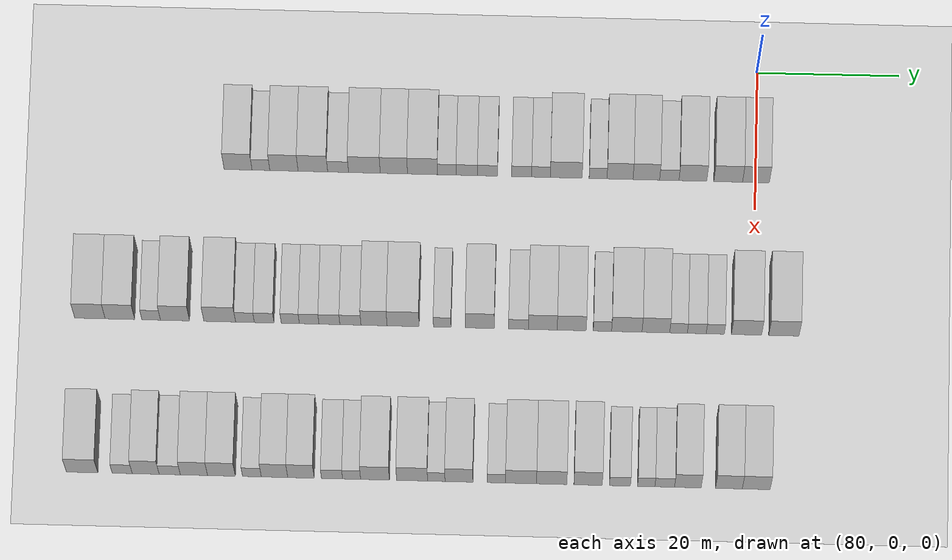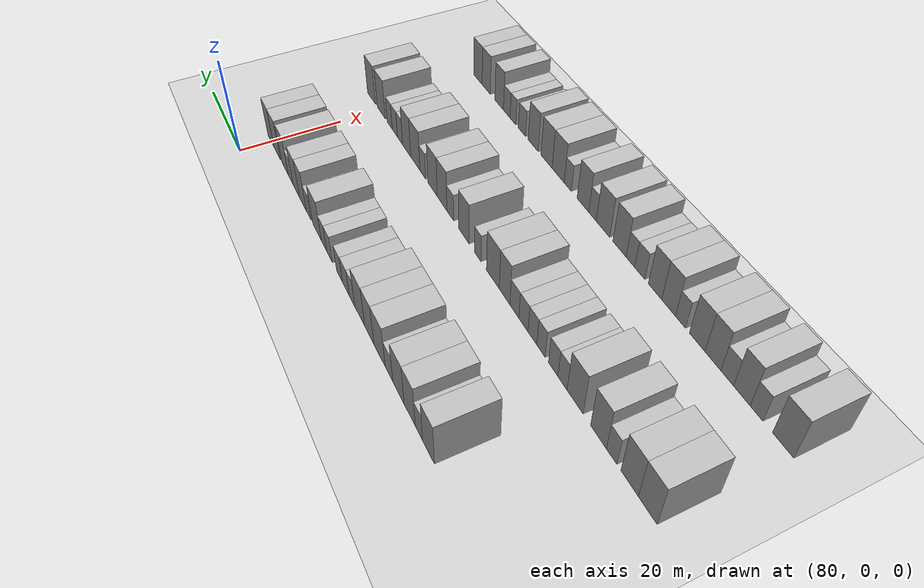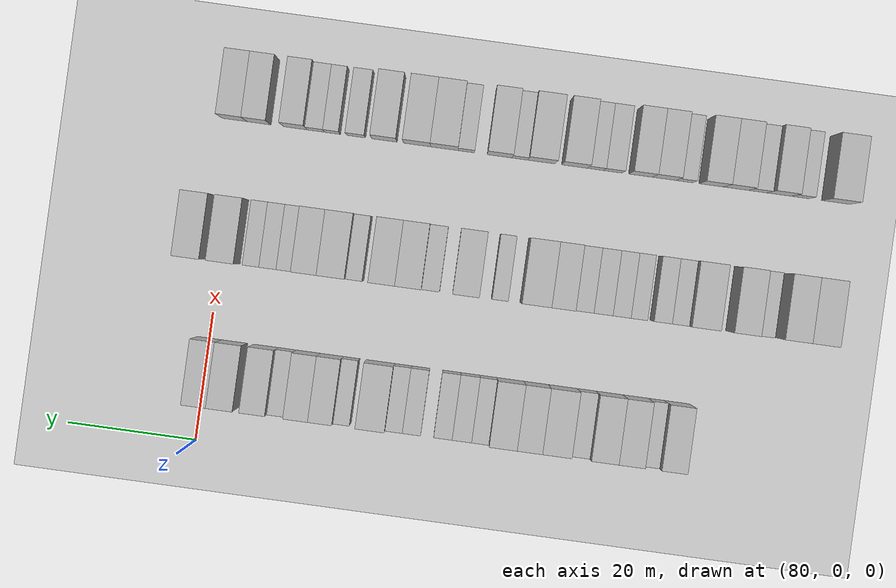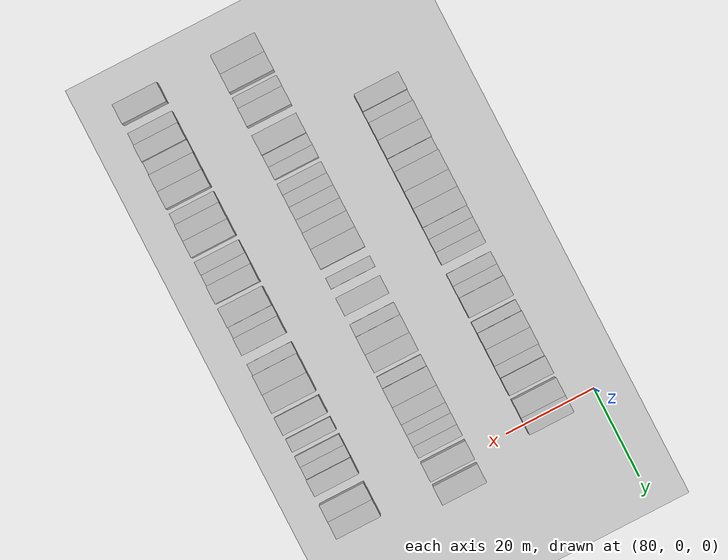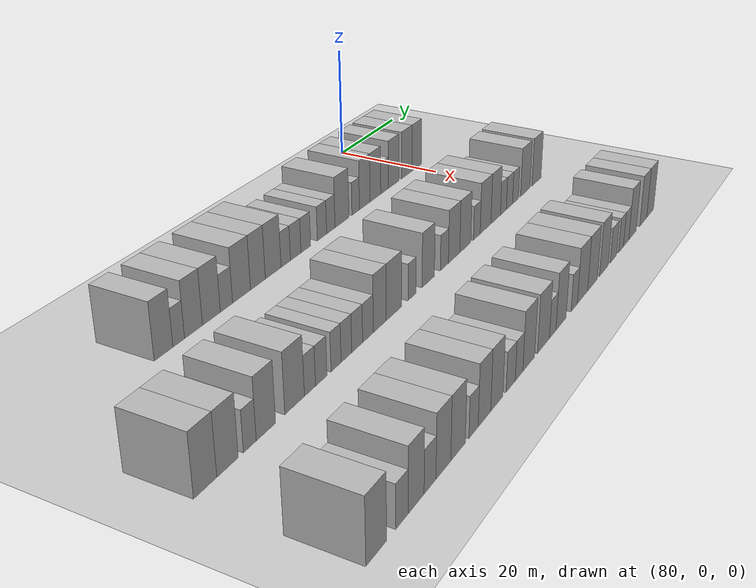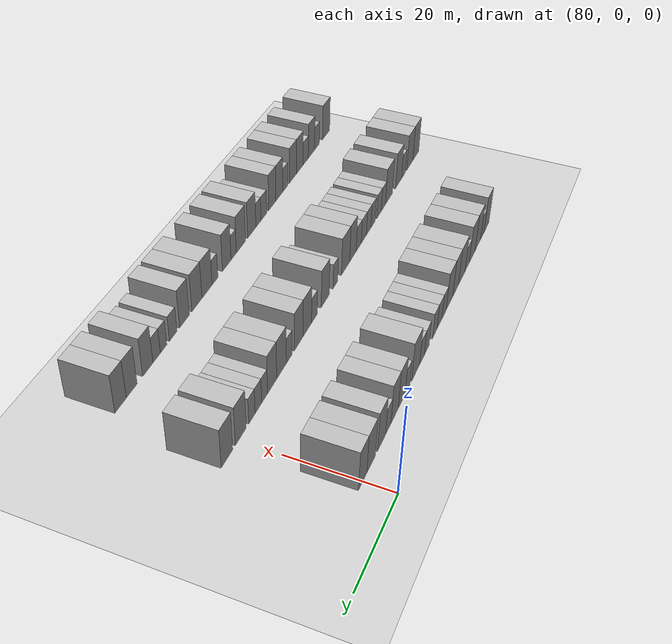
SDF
<sdf version="1.6">
 <world name="default">
  <include>
   <name>ground_plane_2</name>
   <uri>model://HANNAS_ground_plane</uri>
   <pose>100 0 0  0 0 0</pose>
  </include>
  <model name="building_650">
   <static>1</static>
   <pose>91.0000 -72.9061 0 0.000000 0.000000 0.000000</pose>
   <link name="link">
    <pose>0 0 4.50 0 0 0</pose>
    <collision name="collision"><geometry><box><size>10.0000 3.9330 9.0000</size></box></geometry></collision>
    <visual name="visual">
     <cast_shadows>0</cast_shadows>
     <geometry><box><size>10.0000 3.9330 9.0000</size></box></geometry>
     <material>
      <script>
       <uri>model://HANNAS_wall/materials/scripts</uri>
       <uri>model://HANNAS_wall/materials/textures</uri>
       <name>vrc/HANNAS_wall</name>
      </script>
     </material>
    </visual>
   </link>
  </model>
  <model name="building_651">
   <static>1</static>
   <pose>91.0000 -69.6868 0 0.000000 0.000000 0.000000</pose>
   <link name="link">
    <pose>0 0 3.00 0 0 0</pose>
    <collision name="collision"><geometry><box><size>10.0000 2.5056 6.0000</size></box></geometry></collision>
    <visual name="visual">
     <cast_shadows>0</cast_shadows>
     <geometry><box><size>10.0000 2.5056 6.0000</size></box></geometry>
     <material>
      <script>
       <uri>model://HANNAS_wall/materials/scripts</uri>
       <uri>model://HANNAS_wall/materials/textures</uri>
       <name>vrc/HANNAS_wall</name>
      </script>
     </material>
    </visual>
   </link>
  </model>
  <model name="building_652">
   <static>1</static>
   <pose>91.0000 -66.4385 0 0.000000 0.000000 0.000000</pose>
   <link name="link">
    <pose>0 0 4.50 0 0 0</pose>
    <collision name="collision"><geometry><box><size>10.0000 3.9911 9.0000</size></box></geometry></collision>
    <visual name="visual">
     <cast_shadows>0</cast_shadows>
     <geometry><box><size>10.0000 3.9911 9.0000</size></box></geometry>
     <material>
      <script>
       <uri>model://HANNAS_wall/materials/scripts</uri>
       <uri>model://HANNAS_wall/materials/textures</uri>
       <name>vrc/HANNAS_wall</name>
      </script>
     </material>
    </visual>
   </link>
  </model>
  <model name="building_653">
   <static>1</static>
   <pose>91.0000 -62.3617 0 0.000000 0.000000 0.000000</pose>
   <link name="link">
    <pose>0 0 4.50 0 0 0</pose>
    <collision name="collision"><geometry><box><size>10.0000 4.1624 9.0000</size></box></geometry></collision>
    <visual name="visual">
     <cast_shadows>0</cast_shadows>
     <geometry><box><size>10.0000 4.1624 9.0000</size></box></geometry>
     <material>
      <script>
       <uri>model://HANNAS_wall/materials/scripts</uri>
       <uri>model://HANNAS_wall/materials/textures</uri>
       <name>vrc/HANNAS_wall</name>
      </script>
     </material>
    </visual>
   </link>
  </model>
  <model name="building_654">
   <static>1</static>
   <pose>91.0000 -58.8092 0 0.000000 0.000000 0.000000</pose>
   <link name="link">
    <pose>0 0 3.00 0 0 0</pose>
    <collision name="collision"><geometry><box><size>10.0000 2.9426 6.0000</size></box></geometry></collision>
    <visual name="visual">
     <cast_shadows>0</cast_shadows>
     <geometry><box><size>10.0000 2.9426 6.0000</size></box></geometry>
     <material>
      <script>
       <uri>model://HANNAS_wall/materials/scripts</uri>
       <uri>model://HANNAS_wall/materials/textures</uri>
       <name>vrc/HANNAS_wall</name>
      </script>
     </material>
    </visual>
   </link>
  </model>
  <model name="building_655">
   <static>1</static>
   <pose>91.0000 -55.1025 0 0.000000 0.000000 0.000000</pose>
   <link name="link">
    <pose>0 0 4.50 0 0 0</pose>
    <collision name="collision"><geometry><box><size>10.0000 4.4709 9.0000</size></box></geometry></collision>
    <visual name="visual">
     <cast_shadows>0</cast_shadows>
     <geometry><box><size>10.0000 4.4709 9.0000</size></box></geometry>
     <material>
      <script>
       <uri>model://HANNAS_wall/materials/scripts</uri>
       <uri>model://HANNAS_wall/materials/textures</uri>
       <name>vrc/HANNAS_wall</name>
      </script>
     </material>
    </visual>
   </link>
  </model>
  <model name="building_656">
   <static>1</static>
   <pose>91.0000 -50.9468 0 0.000000 0.000000 0.000000</pose>
   <link name="link">
    <pose>0 0 4.50 0 0 0</pose>
    <collision name="collision"><geometry><box><size>10.0000 3.8405 9.0000</size></box></geometry></collision>
    <visual name="visual">
     <cast_shadows>0</cast_shadows>
     <geometry><box><size>10.0000 3.8405 9.0000</size></box></geometry>
     <material>
      <script>
       <uri>model://HANNAS_wall/materials/scripts</uri>
       <uri>model://HANNAS_wall/materials/textures</uri>
       <name>vrc/HANNAS_wall</name>
      </script>
     </material>
    </visual>
   </link>
  </model>
  <model name="building_657">
   <static>1</static>
   <pose>91.0000 -46.9062 0 0.000000 0.000000 0.000000</pose>
   <link name="link">
    <pose>0 0 4.50 0 0 0</pose>
    <collision name="collision"><geometry><box><size>10.0000 4.2408 9.0000</size></box></geometry></collision>
    <visual name="visual">
     <cast_shadows>0</cast_shadows>
     <geometry><box><size>10.0000 4.2408 9.0000</size></box></geometry>
     <material>
      <script>
       <uri>model://HANNAS_wall/materials/scripts</uri>
       <uri>model://HANNAS_wall/materials/textures</uri>
       <name>vrc/HANNAS_wall</name>
      </script>
     </material>
    </visual>
   </link>
  </model>
  <model name="building_658">
   <static>1</static>
   <pose>91.0000 -43.4727 0 0.000000 0.000000 0.000000</pose>
   <link name="link">
    <pose>0 0 3.00 0 0 0</pose>
    <collision name="collision"><geometry><box><size>10.0000 2.6260 6.0000</size></box></geometry></collision>
    <visual name="visual">
     <cast_shadows>0</cast_shadows>
     <geometry><box><size>10.0000 2.6260 6.0000</size></box></geometry>
     <material>
      <script>
       <uri>model://HANNAS_wall/materials/scripts</uri>
       <uri>model://HANNAS_wall/materials/textures</uri>
       <name>vrc/HANNAS_wall</name>
      </script>
     </material>
    </visual>
   </link>
  </model>
  <model name="building_659">
   <static>1</static>
   <pose>91.0000 -40.6644 0 0.000000 0.000000 0.000000</pose>
   <link name="link">
    <pose>0 0 3.00 0 0 0</pose>
    <collision name="collision"><geometry><box><size>10.0000 2.9906 6.0000</size></box></geometry></collision>
    <visual name="visual">
     <cast_shadows>0</cast_shadows>
     <geometry><box><size>10.0000 2.9906 6.0000</size></box></geometry>
     <material>
      <script>
       <uri>model://HANNAS_wall/materials/scripts</uri>
       <uri>model://HANNAS_wall/materials/textures</uri>
       <name>vrc/HANNAS_wall</name>
      </script>
     </material>
    </visual>
   </link>
  </model>
  <model name="building_660">
   <static>1</static>
   <pose>91.0000 -37.7574 0 0.000000 0.000000 0.000000</pose>
   <link name="link">
    <pose>0 0 3.00 0 0 0</pose>
    <collision name="collision"><geometry><box><size>10.0000 2.8234 6.0000</size></box></geometry></collision>
    <visual name="visual">
     <cast_shadows>0</cast_shadows>
     <geometry><box><size>10.0000 2.8234 6.0000</size></box></geometry>
     <material>
      <script>
       <uri>model://HANNAS_wall/materials/scripts</uri>
       <uri>model://HANNAS_wall/materials/textures</uri>
       <name>vrc/HANNAS_wall</name>
      </script>
     </material>
    </visual>
   </link>
  </model>
  <model name="building_661">
   <static>1</static>
   <pose>91.0000 -32.9407 0 0.000000 0.000000 0.000000</pose>
   <link name="link">
    <pose>0 0 3.00 0 0 0</pose>
    <collision name="collision"><geometry><box><size>10.0000 2.8101 6.0000</size></box></geometry></collision>
    <visual name="visual">
     <cast_shadows>0</cast_shadows>
     <geometry><box><size>10.0000 2.8101 6.0000</size></box></geometry>
     <material>
      <script>
       <uri>model://HANNAS_wall/materials/scripts</uri>
       <uri>model://HANNAS_wall/materials/textures</uri>
       <name>vrc/HANNAS_wall</name>
      </script>
     </material>
    </visual>
   </link>
  </model>
  <model name="building_662">
   <static>1</static>
   <pose>91.0000 -30.2184 0 0.000000 0.000000 0.000000</pose>
   <link name="link">
    <pose>0 0 3.00 0 0 0</pose>
    <collision name="collision"><geometry><box><size>10.0000 2.6346 6.0000</size></box></geometry></collision>
    <visual name="visual">
     <cast_shadows>0</cast_shadows>
     <geometry><box><size>10.0000 2.6346 6.0000</size></box></geometry>
     <material>
      <script>
       <uri>model://HANNAS_wall/materials/scripts</uri>
       <uri>model://HANNAS_wall/materials/textures</uri>
       <name>vrc/HANNAS_wall</name>
      </script>
     </material>
    </visual>
   </link>
  </model>
  <model name="building_663">
   <static>1</static>
   <pose>91.0000 -26.6694 0 0.000000 0.000000 0.000000</pose>
   <link name="link">
    <pose>0 0 4.50 0 0 0</pose>
    <collision name="collision"><geometry><box><size>10.0000 4.4635 9.0000</size></box></geometry></collision>
    <visual name="visual">
     <cast_shadows>0</cast_shadows>
     <geometry><box><size>10.0000 4.4635 9.0000</size></box></geometry>
     <material>
      <script>
       <uri>model://HANNAS_wall/materials/scripts</uri>
       <uri>model://HANNAS_wall/materials/textures</uri>
       <name>vrc/HANNAS_wall</name>
      </script>
     </material>
    </visual>
   </link>
  </model>
  <model name="building_664">
   <static>1</static>
   <pose>91.0000 -22.1870 0 0.000000 0.000000 0.000000</pose>
   <link name="link">
    <pose>0 0 3.00 0 0 0</pose>
    <collision name="collision"><geometry><box><size>10.0000 2.5015 6.0000</size></box></geometry></collision>
    <visual name="visual">
     <cast_shadows>0</cast_shadows>
     <geometry><box><size>10.0000 2.5015 6.0000</size></box></geometry>
     <material>
      <script>
       <uri>model://HANNAS_wall/materials/scripts</uri>
       <uri>model://HANNAS_wall/materials/textures</uri>
       <name>vrc/HANNAS_wall</name>
      </script>
     </material>
    </visual>
   </link>
  </model>
  <model name="building_665">
   <static>1</static>
   <pose>91.0000 -19.1028 0 0.000000 0.000000 0.000000</pose>
   <link name="link">
    <pose>0 0 4.50 0 0 0</pose>
    <collision name="collision"><geometry><box><size>10.0000 3.6669 9.0000</size></box></geometry></collision>
    <visual name="visual">
     <cast_shadows>0</cast_shadows>
     <geometry><box><size>10.0000 3.6669 9.0000</size></box></geometry>
     <material>
      <script>
       <uri>model://HANNAS_wall/materials/scripts</uri>
       <uri>model://HANNAS_wall/materials/textures</uri>
       <name>vrc/HANNAS_wall</name>
      </script>
     </material>
    </visual>
   </link>
  </model>
  <model name="building_666">
   <static>1</static>
   <pose>91.0000 -15.3914 0 0.000000 0.000000 0.000000</pose>
   <link name="link">
    <pose>0 0 4.50 0 0 0</pose>
    <collision name="collision"><geometry><box><size>10.0000 3.7560 9.0000</size></box></geometry></collision>
    <visual name="visual">
     <cast_shadows>0</cast_shadows>
     <geometry><box><size>10.0000 3.7560 9.0000</size></box></geometry>
     <material>
      <script>
       <uri>model://HANNAS_wall/materials/scripts</uri>
       <uri>model://HANNAS_wall/materials/textures</uri>
       <name>vrc/HANNAS_wall</name>
      </script>
     </material>
    </visual>
   </link>
  </model>
  <model name="building_667">
   <static>1</static>
   <pose>91.0000 -12.1501 0 0.000000 0.000000 0.000000</pose>
   <link name="link">
    <pose>0 0 3.00 0 0 0</pose>
    <collision name="collision"><geometry><box><size>10.0000 2.7265 6.0000</size></box></geometry></collision>
    <visual name="visual">
     <cast_shadows>0</cast_shadows>
     <geometry><box><size>10.0000 2.7265 6.0000</size></box></geometry>
     <material>
      <script>
       <uri>model://HANNAS_wall/materials/scripts</uri>
       <uri>model://HANNAS_wall/materials/textures</uri>
       <name>vrc/HANNAS_wall</name>
      </script>
     </material>
    </visual>
   </link>
  </model>
  <model name="building_668">
   <static>1</static>
   <pose>91.0000 -8.8299 0 0.000000 0.000000 0.000000</pose>
   <link name="link">
    <pose>0 0 4.50 0 0 0</pose>
    <collision name="collision"><geometry><box><size>10.0000 3.9139 9.0000</size></box></geometry></collision>
    <visual name="visual">
     <cast_shadows>0</cast_shadows>
     <geometry><box><size>10.0000 3.9139 9.0000</size></box></geometry>
     <material>
      <script>
       <uri>model://HANNAS_wall/materials/scripts</uri>
       <uri>model://HANNAS_wall/materials/textures</uri>
       <name>vrc/HANNAS_wall</name>
      </script>
     </material>
    </visual>
   </link>
  </model>
  <model name="building_669">
   <static>1</static>
   <pose>91.0000 -3.8516 0 0.000000 0.000000 0.000000</pose>
   <link name="link">
    <pose>0 0 4.50 0 0 0</pose>
    <collision name="collision"><geometry><box><size>10.0000 4.0427 9.0000</size></box></geometry></collision>
    <visual name="visual">
     <cast_shadows>0</cast_shadows>
     <geometry><box><size>10.0000 4.0427 9.0000</size></box></geometry>
     <material>
      <script>
       <uri>model://HANNAS_wall/materials/scripts</uri>
       <uri>model://HANNAS_wall/materials/textures</uri>
       <name>vrc/HANNAS_wall</name>
      </script>
     </material>
    </visual>
   </link>
  </model>
  <model name="building_670">
   <static>1</static>
   <pose>91.0000 0.0555 0 0.000000 0.000000 0.000000</pose>
   <link name="link">
    <pose>0 0 4.50 0 0 0</pose>
    <collision name="collision"><geometry><box><size>10.0000 3.7714 9.0000</size></box></geometry></collision>
    <visual name="visual">
     <cast_shadows>0</cast_shadows>
     <geometry><box><size>10.0000 3.7714 9.0000</size></box></geometry>
     <material>
      <script>
       <uri>model://HANNAS_wall/materials/scripts</uri>
       <uri>model://HANNAS_wall/materials/textures</uri>
       <name>vrc/HANNAS_wall</name>
      </script>
     </material>
    </visual>
   </link>
  </model>
  <model name="building_846">
   <static>1</static>
   <pose>113.0000 -92.8851 0 0.000000 0.000000 0.000000</pose>
   <link name="link">
    <pose>0 0 4.50 0 0 0</pose>
    <collision name="collision"><geometry><box><size>10.0000 4.2647 9.0000</size></box></geometry></collision>
    <visual name="visual">
     <cast_shadows>0</cast_shadows>
     <geometry><box><size>10.0000 4.2647 9.0000</size></box></geometry>
     <material>
      <script>
       <uri>model://HANNAS_wall/materials/scripts</uri>
       <uri>model://HANNAS_wall/materials/textures</uri>
       <name>vrc/HANNAS_wall</name>
      </script>
     </material>
    </visual>
   </link>
  </model>
  <model name="building_847">
   <static>1</static>
   <pose>113.0000 -88.6807 0 0.000000 0.000000 0.000000</pose>
   <link name="link">
    <pose>0 0 4.50 0 0 0</pose>
    <collision name="collision"><geometry><box><size>10.0000 4.1440 9.0000</size></box></geometry></collision>
    <visual name="visual">
     <cast_shadows>0</cast_shadows>
     <geometry><box><size>10.0000 4.1440 9.0000</size></box></geometry>
     <material>
      <script>
       <uri>model://HANNAS_wall/materials/scripts</uri>
       <uri>model://HANNAS_wall/materials/textures</uri>
       <name>vrc/HANNAS_wall</name>
      </script>
     </material>
    </visual>
   </link>
  </model>
  <model name="building_848">
   <static>1</static>
   <pose>113.0000 -84.3056 0 0.000000 0.000000 0.000000</pose>
   <link name="link">
    <pose>0 0 3.00 0 0 0</pose>
    <collision name="collision"><geometry><box><size>10.0000 2.6062 6.0000</size></box></geometry></collision>
    <visual name="visual">
     <cast_shadows>0</cast_shadows>
     <geometry><box><size>10.0000 2.6062 6.0000</size></box></geometry>
     <material>
      <script>
       <uri>model://HANNAS_wall/materials/scripts</uri>
       <uri>model://HANNAS_wall/materials/textures</uri>
       <name>vrc/HANNAS_wall</name>
      </script>
     </material>
    </visual>
   </link>
  </model>
  <model name="building_849">
   <static>1</static>
   <pose>113.0000 -80.9613 0 0.000000 0.000000 0.000000</pose>
   <link name="link">
    <pose>0 0 4.50 0 0 0</pose>
    <collision name="collision"><geometry><box><size>10.0000 4.0823 9.0000</size></box></geometry></collision>
    <visual name="visual">
     <cast_shadows>0</cast_shadows>
     <geometry><box><size>10.0000 4.0823 9.0000</size></box></geometry>
     <material>
      <script>
       <uri>model://HANNAS_wall/materials/scripts</uri>
       <uri>model://HANNAS_wall/materials/textures</uri>
       <name>vrc/HANNAS_wall</name>
      </script>
     </material>
    </visual>
   </link>
  </model>
  <model name="building_850">
   <static>1</static>
   <pose>113.0000 -74.6984 0 0.000000 0.000000 0.000000</pose>
   <link name="link">
    <pose>0 0 4.50 0 0 0</pose>
    <collision name="collision"><geometry><box><size>10.0000 4.4434 9.0000</size></box></geometry></collision>
    <visual name="visual">
     <cast_shadows>0</cast_shadows>
     <geometry><box><size>10.0000 4.4434 9.0000</size></box></geometry>
     <material>
      <script>
       <uri>model://HANNAS_wall/materials/scripts</uri>
       <uri>model://HANNAS_wall/materials/textures</uri>
       <name>vrc/HANNAS_wall</name>
      </script>
     </material>
    </visual>
   </link>
  </model>
  <model name="building_851">
   <static>1</static>
   <pose>113.0000 -71.1653 0 0.000000 0.000000 0.000000</pose>
   <link name="link">
    <pose>0 0 3.00 0 0 0</pose>
    <collision name="collision"><geometry><box><size>10.0000 2.6228 6.0000</size></box></geometry></collision>
    <visual name="visual">
     <cast_shadows>0</cast_shadows>
     <geometry><box><size>10.0000 2.6228 6.0000</size></box></geometry>
     <material>
      <script>
       <uri>model://HANNAS_wall/materials/scripts</uri>
       <uri>model://HANNAS_wall/materials/textures</uri>
       <name>vrc/HANNAS_wall</name>
      </script>
     </material>
    </visual>
   </link>
  </model>
  <model name="building_852">
   <static>1</static>
   <pose>113.0000 -68.4687 0 0.000000 0.000000 0.000000</pose>
   <link name="link">
    <pose>0 0 3.00 0 0 0</pose>
    <collision name="collision"><geometry><box><size>10.0000 2.7706 6.0000</size></box></geometry></collision>
    <visual name="visual">
     <cast_shadows>0</cast_shadows>
     <geometry><box><size>10.0000 2.7706 6.0000</size></box></geometry>
     <material>
      <script>
       <uri>model://HANNAS_wall/materials/scripts</uri>
       <uri>model://HANNAS_wall/materials/textures</uri>
       <name>vrc/HANNAS_wall</name>
      </script>
     </material>
    </visual>
   </link>
  </model>
  <model name="building_853">
   <static>1</static>
   <pose>113.0000 -64.8138 0 0.000000 0.000000 0.000000</pose>
   <link name="link">
    <pose>0 0 3.00 0 0 0</pose>
    <collision name="collision"><geometry><box><size>10.0000 2.5391 6.0000</size></box></geometry></collision>
    <visual name="visual">
     <cast_shadows>0</cast_shadows>
     <geometry><box><size>10.0000 2.5391 6.0000</size></box></geometry>
     <material>
      <script>
       <uri>model://HANNAS_wall/materials/scripts</uri>
       <uri>model://HANNAS_wall/materials/textures</uri>
       <name>vrc/HANNAS_wall</name>
      </script>
     </material>
    </visual>
   </link>
  </model>
  <model name="building_854">
   <static>1</static>
   <pose>113.0000 -62.1685 0 0.000000 0.000000 0.000000</pose>
   <link name="link">
    <pose>0 0 3.00 0 0 0</pose>
    <collision name="collision"><geometry><box><size>10.0000 2.7515 6.0000</size></box></geometry></collision>
    <visual name="visual">
     <cast_shadows>0</cast_shadows>
     <geometry><box><size>10.0000 2.7515 6.0000</size></box></geometry>
     <material>
      <script>
       <uri>model://HANNAS_wall/materials/scripts</uri>
       <uri>model://HANNAS_wall/materials/textures</uri>
       <name>vrc/HANNAS_wall</name>
      </script>
     </material>
    </visual>
   </link>
  </model>
  <model name="building_855">
   <static>1</static>
   <pose>113.0000 -59.3301 0 0.000000 0.000000 0.000000</pose>
   <link name="link">
    <pose>0 0 3.00 0 0 0</pose>
    <collision name="collision"><geometry><box><size>10.0000 2.9253 6.0000</size></box></geometry></collision>
    <visual name="visual">
     <cast_shadows>0</cast_shadows>
     <geometry><box><size>10.0000 2.9253 6.0000</size></box></geometry>
     <material>
      <script>
       <uri>model://HANNAS_wall/materials/scripts</uri>
       <uri>model://HANNAS_wall/materials/textures</uri>
       <name>vrc/HANNAS_wall</name>
      </script>
     </material>
    </visual>
   </link>
  </model>
  <model name="building_856">
   <static>1</static>
   <pose>113.0000 -56.3866 0 0.000000 0.000000 0.000000</pose>
   <link name="link">
    <pose>0 0 3.00 0 0 0</pose>
    <collision name="collision"><geometry><box><size>10.0000 2.9619 6.0000</size></box></geometry></collision>
    <visual name="visual">
     <cast_shadows>0</cast_shadows>
     <geometry><box><size>10.0000 2.9619 6.0000</size></box></geometry>
     <material>
      <script>
       <uri>model://HANNAS_wall/materials/scripts</uri>
       <uri>model://HANNAS_wall/materials/textures</uri>
       <name>vrc/HANNAS_wall</name>
      </script>
     </material>
    </visual>
   </link>
  </model>
  <model name="building_857">
   <static>1</static>
   <pose>113.0000 -53.0785 0 0.000000 0.000000 0.000000</pose>
   <link name="link">
    <pose>0 0 4.50 0 0 0</pose>
    <collision name="collision"><geometry><box><size>10.0000 3.6541 9.0000</size></box></geometry></collision>
    <visual name="visual">
     <cast_shadows>0</cast_shadows>
     <geometry><box><size>10.0000 3.6541 9.0000</size></box></geometry>
     <material>
      <script>
       <uri>model://HANNAS_wall/materials/scripts</uri>
       <uri>model://HANNAS_wall/materials/textures</uri>
       <name>vrc/HANNAS_wall</name>
      </script>
     </material>
    </visual>
   </link>
  </model>
  <model name="building_858">
   <static>1</static>
   <pose>113.0000 -49.0031 0 0.000000 0.000000 0.000000</pose>
   <link name="link">
    <pose>0 0 4.50 0 0 0</pose>
    <collision name="collision"><geometry><box><size>10.0000 4.4967 9.0000</size></box></geometry></collision>
    <visual name="visual">
     <cast_shadows>0</cast_shadows>
     <geometry><box><size>10.0000 4.4967 9.0000</size></box></geometry>
     <material>
      <script>
       <uri>model://HANNAS_wall/materials/scripts</uri>
       <uri>model://HANNAS_wall/materials/textures</uri>
       <name>vrc/HANNAS_wall</name>
      </script>
     </material>
    </visual>
   </link>
  </model>
  <model name="building_859">
   <static>1</static>
   <pose>113.0000 -43.5212 0 0.000000 0.000000 0.000000</pose>
   <link name="link">
    <pose>0 0 3.00 0 0 0</pose>
    <collision name="collision"><geometry><box><size>10.0000 2.4669 6.0000</size></box></geometry></collision>
    <visual name="visual">
     <cast_shadows>0</cast_shadows>
     <geometry><box><size>10.0000 2.4669 6.0000</size></box></geometry>
     <material>
      <script>
       <uri>model://HANNAS_wall/materials/scripts</uri>
       <uri>model://HANNAS_wall/materials/textures</uri>
       <name>vrc/HANNAS_wall</name>
      </script>
     </material>
    </visual>
   </link>
  </model>
  <model name="building_860">
   <static>1</static>
   <pose>113.0000 -38.2627 0 0.000000 0.000000 0.000000</pose>
   <link name="link">
    <pose>0 0 4.50 0 0 0</pose>
    <collision name="collision"><geometry><box><size>10.0000 4.0501 9.0000</size></box></geometry></collision>
    <visual name="visual">
     <cast_shadows>0</cast_shadows>
     <geometry><box><size>10.0000 4.0501 9.0000</size></box></geometry>
     <material>
      <script>
       <uri>model://HANNAS_wall/materials/scripts</uri>
       <uri>model://HANNAS_wall/materials/textures</uri>
       <name>vrc/HANNAS_wall</name>
      </script>
     </material>
    </visual>
   </link>
  </model>
  <model name="building_861">
   <static>1</static>
   <pose>113.0000 -32.8503 0 0.000000 0.000000 0.000000</pose>
   <link name="link">
    <pose>0 0 3.00 0 0 0</pose>
    <collision name="collision"><geometry><box><size>10.0000 2.7748 6.0000</size></box></geometry></collision>
    <visual name="visual">
     <cast_shadows>0</cast_shadows>
     <geometry><box><size>10.0000 2.7748 6.0000</size></box></geometry>
     <material>
      <script>
       <uri>model://HANNAS_wall/materials/scripts</uri>
       <uri>model://HANNAS_wall/materials/textures</uri>
       <name>vrc/HANNAS_wall</name>
      </script>
     </material>
    </visual>
   </link>
  </model>
  <model name="building_862">
   <static>1</static>
   <pose>113.0000 -29.4501 0 0.000000 0.000000 0.000000</pose>
   <link name="link">
    <pose>0 0 4.50 0 0 0</pose>
    <collision name="collision"><geometry><box><size>10.0000 4.0256 9.0000</size></box></geometry></collision>
    <visual name="visual">
     <cast_shadows>0</cast_shadows>
     <geometry><box><size>10.0000 4.0256 9.0000</size></box></geometry>
     <material>
      <script>
       <uri>model://HANNAS_wall/materials/scripts</uri>
       <uri>model://HANNAS_wall/materials/textures</uri>
       <name>vrc/HANNAS_wall</name>
      </script>
     </material>
    </visual>
   </link>
  </model>
  <model name="building_863">
   <static>1</static>
   <pose>113.0000 -25.4055 0 0.000000 0.000000 0.000000</pose>
   <link name="link">
    <pose>0 0 4.50 0 0 0</pose>
    <collision name="collision"><geometry><box><size>10.0000 4.0637 9.0000</size></box></geometry></collision>
    <visual name="visual">
     <cast_shadows>0</cast_shadows>
     <geometry><box><size>10.0000 4.0637 9.0000</size></box></geometry>
     <material>
      <script>
       <uri>model://HANNAS_wall/materials/scripts</uri>
       <uri>model://HANNAS_wall/materials/textures</uri>
       <name>vrc/HANNAS_wall</name>
      </script>
     </material>
    </visual>
   </link>
  </model>
  <model name="building_864">
   <static>1</static>
   <pose>113.0000 -21.0954 0 0.000000 0.000000 0.000000</pose>
   <link name="link">
    <pose>0 0 3.00 0 0 0</pose>
    <collision name="collision"><geometry><box><size>10.0000 2.5565 6.0000</size></box></geometry></collision>
    <visual name="visual">
     <cast_shadows>0</cast_shadows>
     <geometry><box><size>10.0000 2.5565 6.0000</size></box></geometry>
     <material>
      <script>
       <uri>model://HANNAS_wall/materials/scripts</uri>
       <uri>model://HANNAS_wall/materials/textures</uri>
       <name>vrc/HANNAS_wall</name>
      </script>
     </material>
    </visual>
   </link>
  </model>
  <model name="building_865">
   <static>1</static>
   <pose>113.0000 -17.6861 0 0.000000 0.000000 0.000000</pose>
   <link name="link">
    <pose>0 0 4.50 0 0 0</pose>
    <collision name="collision"><geometry><box><size>10.0000 4.2619 9.0000</size></box></geometry></collision>
    <visual name="visual">
     <cast_shadows>0</cast_shadows>
     <geometry><box><size>10.0000 4.2619 9.0000</size></box></geometry>
     <material>
      <script>
       <uri>model://HANNAS_wall/materials/scripts</uri>
       <uri>model://HANNAS_wall/materials/textures</uri>
       <name>vrc/HANNAS_wall</name>
      </script>
     </material>
    </visual>
   </link>
  </model>
  <model name="building_866">
   <static>1</static>
   <pose>113.0000 -13.6121 0 0.000000 0.000000 0.000000</pose>
   <link name="link">
    <pose>0 0 4.50 0 0 0</pose>
    <collision name="collision"><geometry><box><size>10.0000 3.8863 9.0000</size></box></geometry></collision>
    <visual name="visual">
     <cast_shadows>0</cast_shadows>
     <geometry><box><size>10.0000 3.8863 9.0000</size></box></geometry>
     <material>
      <script>
       <uri>model://HANNAS_wall/materials/scripts</uri>
       <uri>model://HANNAS_wall/materials/textures</uri>
       <name>vrc/HANNAS_wall</name>
      </script>
     </material>
    </visual>
   </link>
  </model>
  <model name="building_867">
   <static>1</static>
   <pose>113.0000 -10.4335 0 0.000000 0.000000 0.000000</pose>
   <link name="link">
    <pose>0 0 3.00 0 0 0</pose>
    <collision name="collision"><geometry><box><size>10.0000 2.4710 6.0000</size></box></geometry></collision>
    <visual name="visual">
     <cast_shadows>0</cast_shadows>
     <geometry><box><size>10.0000 2.4710 6.0000</size></box></geometry>
     <material>
      <script>
       <uri>model://HANNAS_wall/materials/scripts</uri>
       <uri>model://HANNAS_wall/materials/textures</uri>
       <name>vrc/HANNAS_wall</name>
      </script>
     </material>
    </visual>
   </link>
  </model>
  <model name="building_868">
   <static>1</static>
   <pose>113.0000 -7.8797 0 0.000000 0.000000 0.000000</pose>
   <link name="link">
    <pose>0 0 3.00 0 0 0</pose>
    <collision name="collision"><geometry><box><size>10.0000 2.6365 6.0000</size></box></geometry></collision>
    <visual name="visual">
     <cast_shadows>0</cast_shadows>
     <geometry><box><size>10.0000 2.6365 6.0000</size></box></geometry>
     <material>
      <script>
       <uri>model://HANNAS_wall/materials/scripts</uri>
       <uri>model://HANNAS_wall/materials/textures</uri>
       <name>vrc/HANNAS_wall</name>
      </script>
     </material>
    </visual>
   </link>
  </model>
  <model name="building_869">
   <static>1</static>
   <pose>113.0000 -5.2918 0 0.000000 0.000000 0.000000</pose>
   <link name="link">
    <pose>0 0 3.00 0 0 0</pose>
    <collision name="collision"><geometry><box><size>10.0000 2.5393 6.0000</size></box></geometry></collision>
    <visual name="visual">
     <cast_shadows>0</cast_shadows>
     <geometry><box><size>10.0000 2.5393 6.0000</size></box></geometry>
     <material>
      <script>
       <uri>model://HANNAS_wall/materials/scripts</uri>
       <uri>model://HANNAS_wall/materials/textures</uri>
       <name>vrc/HANNAS_wall</name>
      </script>
     </material>
    </visual>
   </link>
  </model>
  <model name="building_870">
   <static>1</static>
   <pose>113.0000 -0.9116 0 0.000000 0.000000 0.000000</pose>
   <link name="link">
    <pose>0 0 4.50 0 0 0</pose>
    <collision name="collision"><geometry><box><size>10.0000 4.2210 9.0000</size></box></geometry></collision>
    <visual name="visual">
     <cast_shadows>0</cast_shadows>
     <geometry><box><size>10.0000 4.2210 9.0000</size></box></geometry>
     <material>
      <script>
       <uri>model://HANNAS_wall/materials/scripts</uri>
       <uri>model://HANNAS_wall/materials/textures</uri>
       <name>vrc/HANNAS_wall</name>
      </script>
     </material>
    </visual>
   </link>
  </model>
  <model name="building_871">
   <static>1</static>
   <pose>113.0000 4.3147 0 0.000000 0.000000 0.000000</pose>
   <link name="link">
    <pose>0 0 4.50 0 0 0</pose>
    <collision name="collision"><geometry><box><size>10.0000 4.2316 9.0000</size></box></geometry></collision>
    <visual name="visual">
     <cast_shadows>0</cast_shadows>
     <geometry><box><size>10.0000 4.2316 9.0000</size></box></geometry>
     <material>
      <script>
       <uri>model://HANNAS_wall/materials/scripts</uri>
       <uri>model://HANNAS_wall/materials/textures</uri>
       <name>vrc/HANNAS_wall</name>
      </script>
     </material>
    </visual>
   </link>
  </model>
  <model name="building_1029">
   <static>1</static>
   <pose>135.0000 -93.0740 0 0.000000 0.000000 0.000000</pose>
   <link name="link">
    <pose>0 0 4.50 0 0 0</pose>
    <collision name="collision"><geometry><box><size>10.0000 4.3745 9.0000</size></box></geometry></collision>
    <visual name="visual">
     <cast_shadows>0</cast_shadows>
     <geometry><box><size>10.0000 4.3745 9.0000</size></box></geometry>
     <material>
      <script>
       <uri>model://HANNAS_wall/materials/scripts</uri>
       <uri>model://HANNAS_wall/materials/textures</uri>
       <name>vrc/HANNAS_wall</name>
      </script>
     </material>
    </visual>
   </link>
  </model>
  <model name="building_1030">
   <static>1</static>
   <pose>135.0000 -87.4923 0 0.000000 0.000000 0.000000</pose>
   <link name="link">
    <pose>0 0 3.00 0 0 0</pose>
    <collision name="collision"><geometry><box><size>10.0000 2.7888 6.0000</size></box></geometry></collision>
    <visual name="visual">
     <cast_shadows>0</cast_shadows>
     <geometry><box><size>10.0000 2.7888 6.0000</size></box></geometry>
     <material>
      <script>
       <uri>model://HANNAS_wall/materials/scripts</uri>
       <uri>model://HANNAS_wall/materials/textures</uri>
       <name>vrc/HANNAS_wall</name>
      </script>
     </material>
    </visual>
   </link>
  </model>
  <model name="building_1031">
   <static>1</static>
   <pose>135.0000 -84.2216 0 0.000000 0.000000 0.000000</pose>
   <link name="link">
    <pose>0 0 4.50 0 0 0</pose>
    <collision name="collision"><geometry><box><size>10.0000 3.7526 9.0000</size></box></geometry></collision>
    <visual name="visual">
     <cast_shadows>0</cast_shadows>
     <geometry><box><size>10.0000 3.7526 9.0000</size></box></geometry>
     <material>
      <script>
       <uri>model://HANNAS_wall/materials/scripts</uri>
       <uri>model://HANNAS_wall/materials/textures</uri>
       <name>vrc/HANNAS_wall</name>
      </script>
     </material>
    </visual>
   </link>
  </model>
  <model name="building_1032">
   <static>1</static>
   <pose>135.0000 -80.8732 0 0.000000 0.000000 0.000000</pose>
   <link name="link">
    <pose>0 0 3.00 0 0 0</pose>
    <collision name="collision"><geometry><box><size>10.0000 2.9442 6.0000</size></box></geometry></collision>
    <visual name="visual">
     <cast_shadows>0</cast_shadows>
     <geometry><box><size>10.0000 2.9442 6.0000</size></box></geometry>
     <material>
      <script>
       <uri>model://HANNAS_wall/materials/scripts</uri>
       <uri>model://HANNAS_wall/materials/textures</uri>
       <name>vrc/HANNAS_wall</name>
      </script>
     </material>
    </visual>
   </link>
  </model>
  <model name="building_1033">
   <static>1</static>
   <pose>135.0000 -77.4999 0 0.000000 0.000000 0.000000</pose>
   <link name="link">
    <pose>0 0 4.50 0 0 0</pose>
    <collision name="collision"><geometry><box><size>10.0000 3.8024 9.0000</size></box></geometry></collision>
    <visual name="visual">
     <cast_shadows>0</cast_shadows>
     <geometry><box><size>10.0000 3.8024 9.0000</size></box></geometry>
     <material>
      <script>
       <uri>model://HANNAS_wall/materials/scripts</uri>
       <uri>model://HANNAS_wall/materials/textures</uri>
       <name>vrc/HANNAS_wall</name>
      </script>
     </material>
    </visual>
   </link>
  </model>
  <model name="building_1034">
   <static>1</static>
   <pose>135.0000 -73.6611 0 0.000000 0.000000 0.000000</pose>
   <link name="link">
    <pose>0 0 4.50 0 0 0</pose>
    <collision name="collision"><geometry><box><size>10.0000 3.8751 9.0000</size></box></geometry></collision>
    <visual name="visual">
     <cast_shadows>0</cast_shadows>
     <geometry><box><size>10.0000 3.8751 9.0000</size></box></geometry>
     <material>
      <script>
       <uri>model://HANNAS_wall/materials/scripts</uri>
       <uri>model://HANNAS_wall/materials/textures</uri>
       <name>vrc/HANNAS_wall</name>
      </script>
     </material>
    </visual>
   </link>
  </model>
  <model name="building_1035">
   <static>1</static>
   <pose>135.0000 -69.4197 0 0.000000 0.000000 0.000000</pose>
   <link name="link">
    <pose>0 0 3.00 0 0 0</pose>
    <collision name="collision"><geometry><box><size>10.0000 2.6078 6.0000</size></box></geometry></collision>
    <visual name="visual">
     <cast_shadows>0</cast_shadows>
     <geometry><box><size>10.0000 2.6078 6.0000</size></box></geometry>
     <material>
      <script>
       <uri>model://HANNAS_wall/materials/scripts</uri>
       <uri>model://HANNAS_wall/materials/textures</uri>
       <name>vrc/HANNAS_wall</name>
      </script>
     </material>
    </visual>
   </link>
  </model>
  <model name="building_1036">
   <static>1</static>
   <pose>135.0000 -66.2719 0 0.000000 0.000000 0.000000</pose>
   <link name="link">
    <pose>0 0 4.50 0 0 0</pose>
    <collision name="collision"><geometry><box><size>10.0000 3.6877 9.0000</size></box></geometry></collision>
    <visual name="visual">
     <cast_shadows>0</cast_shadows>
     <geometry><box><size>10.0000 3.6877 9.0000</size></box></geometry>
     <material>
      <script>
       <uri>model://HANNAS_wall/materials/scripts</uri>
       <uri>model://HANNAS_wall/materials/textures</uri>
       <name>vrc/HANNAS_wall</name>
      </script>
     </material>
    </visual>
   </link>
  </model>
  <model name="building_1037">
   <static>1</static>
   <pose>135.0000 -62.5821 0 0.000000 0.000000 0.000000</pose>
   <link name="link">
    <pose>0 0 4.50 0 0 0</pose>
    <collision name="collision"><geometry><box><size>10.0000 3.6920 9.0000</size></box></geometry></collision>
    <visual name="visual">
     <cast_shadows>0</cast_shadows>
     <geometry><box><size>10.0000 3.6920 9.0000</size></box></geometry>
     <material>
      <script>
       <uri>model://HANNAS_wall/materials/scripts</uri>
       <uri>model://HANNAS_wall/materials/textures</uri>
       <name>vrc/HANNAS_wall</name>
      </script>
     </material>
    </visual>
   </link>
  </model>
  <model name="building_1038">
   <static>1</static>
   <pose>135.0000 -58.2637 0 0.000000 0.000000 0.000000</pose>
   <link name="link">
    <pose>0 0 3.00 0 0 0</pose>
    <collision name="collision"><geometry><box><size>10.0000 2.9447 6.0000</size></box></geometry></collision>
    <visual name="visual">
     <cast_shadows>0</cast_shadows>
     <geometry><box><size>10.0000 2.9447 6.0000</size></box></geometry>
     <material>
      <script>
       <uri>model://HANNAS_wall/materials/scripts</uri>
       <uri>model://HANNAS_wall/materials/textures</uri>
       <name>vrc/HANNAS_wall</name>
      </script>
     </material>
    </visual>
   </link>
  </model>
  <model name="building_1039">
   <static>1</static>
   <pose>135.0000 -55.5385 0 0.000000 0.000000 0.000000</pose>
   <link name="link">
    <pose>0 0 3.00 0 0 0</pose>
    <collision name="collision"><geometry><box><size>10.0000 2.5058 6.0000</size></box></geometry></collision>
    <visual name="visual">
     <cast_shadows>0</cast_shadows>
     <geometry><box><size>10.0000 2.5058 6.0000</size></box></geometry>
     <material>
      <script>
       <uri>model://HANNAS_wall/materials/scripts</uri>
       <uri>model://HANNAS_wall/materials/textures</uri>
       <name>vrc/HANNAS_wall</name>
      </script>
     </material>
    </visual>
   </link>
  </model>
  <model name="building_1040">
   <static>1</static>
   <pose>135.0000 -52.2719 0 0.000000 0.000000 0.000000</pose>
   <link name="link">
    <pose>0 0 4.50 0 0 0</pose>
    <collision name="collision"><geometry><box><size>10.0000 4.0274 9.0000</size></box></geometry></collision>
    <visual name="visual">
     <cast_shadows>0</cast_shadows>
     <geometry><box><size>10.0000 4.0274 9.0000</size></box></geometry>
     <material>
      <script>
       <uri>model://HANNAS_wall/materials/scripts</uri>
       <uri>model://HANNAS_wall/materials/textures</uri>
       <name>vrc/HANNAS_wall</name>
      </script>
     </material>
    </visual>
   </link>
  </model>
  <model name="building_1041">
   <static>1</static>
   <pose>135.0000 -47.1056 0 0.000000 0.000000 0.000000</pose>
   <link name="link">
    <pose>0 0 4.50 0 0 0</pose>
    <collision name="collision"><geometry><box><size>10.0000 4.3051 9.0000</size></box></geometry></collision>
    <visual name="visual">
     <cast_shadows>0</cast_shadows>
     <geometry><box><size>10.0000 4.3051 9.0000</size></box></geometry>
     <material>
      <script>
       <uri>model://HANNAS_wall/materials/scripts</uri>
       <uri>model://HANNAS_wall/materials/textures</uri>
       <name>vrc/HANNAS_wall</name>
      </script>
     </material>
    </visual>
   </link>
  </model>
  <model name="building_1042">
   <static>1</static>
   <pose>135.0000 -43.7381 0 0.000000 0.000000 0.000000</pose>
   <link name="link">
    <pose>0 0 3.00 0 0 0</pose>
    <collision name="collision"><geometry><box><size>10.0000 2.4299 6.0000</size></box></geometry></collision>
    <visual name="visual">
     <cast_shadows>0</cast_shadows>
     <geometry><box><size>10.0000 2.4299 6.0000</size></box></geometry>
     <material>
      <script>
       <uri>model://HANNAS_wall/materials/scripts</uri>
       <uri>model://HANNAS_wall/materials/textures</uri>
       <name>vrc/HANNAS_wall</name>
      </script>
     </material>
    </visual>
   </link>
  </model>
  <model name="building_1043">
   <static>1</static>
   <pose>135.0000 -40.5799 0 0.000000 0.000000 0.000000</pose>
   <link name="link">
    <pose>0 0 4.50 0 0 0</pose>
    <collision name="collision"><geometry><box><size>10.0000 3.8867 9.0000</size></box></geometry></collision>
    <visual name="visual">
     <cast_shadows>0</cast_shadows>
     <geometry><box><size>10.0000 3.8867 9.0000</size></box></geometry>
     <material>
      <script>
       <uri>model://HANNAS_wall/materials/scripts</uri>
       <uri>model://HANNAS_wall/materials/textures</uri>
       <name>vrc/HANNAS_wall</name>
      </script>
     </material>
    </visual>
   </link>
  </model>
  <model name="building_1044">
   <static>1</static>
   <pose>135.0000 -35.3683 0 0.000000 0.000000 0.000000</pose>
   <link name="link">
    <pose>0 0 3.00 0 0 0</pose>
    <collision name="collision"><geometry><box><size>10.0000 2.5364 6.0000</size></box></geometry></collision>
    <visual name="visual">
     <cast_shadows>0</cast_shadows>
     <geometry><box><size>10.0000 2.5364 6.0000</size></box></geometry>
     <material>
      <script>
       <uri>model://HANNAS_wall/materials/scripts</uri>
       <uri>model://HANNAS_wall/materials/textures</uri>
       <name>vrc/HANNAS_wall</name>
      </script>
     </material>
    </visual>
   </link>
  </model>
  <model name="building_1045">
   <static>1</static>
   <pose>135.0000 -31.9457 0 0.000000 0.000000 0.000000</pose>
   <link name="link">
    <pose>0 0 4.50 0 0 0</pose>
    <collision name="collision"><geometry><box><size>10.0000 4.3088 9.0000</size></box></geometry></collision>
    <visual name="visual">
     <cast_shadows>0</cast_shadows>
     <geometry><box><size>10.0000 4.3088 9.0000</size></box></geometry>
     <material>
      <script>
       <uri>model://HANNAS_wall/materials/scripts</uri>
       <uri>model://HANNAS_wall/materials/textures</uri>
       <name>vrc/HANNAS_wall</name>
      </script>
     </material>
    </visual>
   </link>
  </model>
  <model name="building_1046">
   <static>1</static>
   <pose>135.0000 -27.6855 0 0.000000 0.000000 0.000000</pose>
   <link name="link">
    <pose>0 0 4.50 0 0 0</pose>
    <collision name="collision"><geometry><box><size>10.0000 4.2117 9.0000</size></box></geometry></collision>
    <visual name="visual">
     <cast_shadows>0</cast_shadows>
     <geometry><box><size>10.0000 4.2117 9.0000</size></box></geometry>
     <material>
      <script>
       <uri>model://HANNAS_wall/materials/scripts</uri>
       <uri>model://HANNAS_wall/materials/textures</uri>
       <name>vrc/HANNAS_wall</name>
      </script>
     </material>
    </visual>
   </link>
  </model>
  <model name="building_1047">
   <static>1</static>
   <pose>135.0000 -22.6152 0 0.000000 0.000000 0.000000</pose>
   <link name="link">
    <pose>0 0 4.50 0 0 0</pose>
    <collision name="collision"><geometry><box><size>10.0000 3.9289 9.0000</size></box></geometry></collision>
    <visual name="visual">
     <cast_shadows>0</cast_shadows>
     <geometry><box><size>10.0000 3.9289 9.0000</size></box></geometry>
     <material>
      <script>
       <uri>model://HANNAS_wall/materials/scripts</uri>
       <uri>model://HANNAS_wall/materials/textures</uri>
       <name>vrc/HANNAS_wall</name>
      </script>
     </material>
    </visual>
   </link>
  </model>
  <model name="building_1048">
   <static>1</static>
   <pose>135.0000 -18.1873 0 0.000000 0.000000 0.000000</pose>
   <link name="link">
    <pose>0 0 3.00 0 0 0</pose>
    <collision name="collision"><geometry><box><size>10.0000 2.9269 6.0000</size></box></geometry></collision>
    <visual name="visual">
     <cast_shadows>0</cast_shadows>
     <geometry><box><size>10.0000 2.9269 6.0000</size></box></geometry>
     <material>
      <script>
       <uri>model://HANNAS_wall/materials/scripts</uri>
       <uri>model://HANNAS_wall/materials/textures</uri>
       <name>vrc/HANNAS_wall</name>
      </script>
     </material>
    </visual>
   </link>
  </model>
  <model name="building_1049">
   <static>1</static>
   <pose>135.0000 -14.5206 0 0.000000 0.000000 0.000000</pose>
   <link name="link">
    <pose>0 0 3.00 0 0 0</pose>
    <collision name="collision"><geometry><box><size>10.0000 2.4065 6.0000</size></box></geometry></collision>
    <visual name="visual">
     <cast_shadows>0</cast_shadows>
     <geometry><box><size>10.0000 2.4065 6.0000</size></box></geometry>
     <material>
      <script>
       <uri>model://HANNAS_wall/materials/scripts</uri>
       <uri>model://HANNAS_wall/materials/textures</uri>
       <name>vrc/HANNAS_wall</name>
      </script>
     </material>
    </visual>
   </link>
  </model>
  <model name="building_1050">
   <static>1</static>
   <pose>135.0000 -11.9446 0 0.000000 0.000000 0.000000</pose>
   <link name="link">
    <pose>0 0 3.00 0 0 0</pose>
    <collision name="collision"><geometry><box><size>10.0000 2.7456 6.0000</size></box></geometry></collision>
    <visual name="visual">
     <cast_shadows>0</cast_shadows>
     <geometry><box><size>10.0000 2.7456 6.0000</size></box></geometry>
     <material>
      <script>
       <uri>model://HANNAS_wall/materials/scripts</uri>
       <uri>model://HANNAS_wall/materials/textures</uri>
       <name>vrc/HANNAS_wall</name>
      </script>
     </material>
    </visual>
   </link>
  </model>
  <model name="building_1051">
   <static>1</static>
   <pose>135.0000 -8.7205 0 0.000000 0.000000 0.000000</pose>
   <link name="link">
    <pose>0 0 4.50 0 0 0</pose>
    <collision name="collision"><geometry><box><size>10.0000 3.7026 9.0000</size></box></geometry></collision>
    <visual name="visual">
     <cast_shadows>0</cast_shadows>
     <geometry><box><size>10.0000 3.7026 9.0000</size></box></geometry>
     <material>
      <script>
       <uri>model://HANNAS_wall/materials/scripts</uri>
       <uri>model://HANNAS_wall/materials/textures</uri>
       <name>vrc/HANNAS_wall</name>
      </script>
     </material>
    </visual>
   </link>
  </model>
  <model name="building_1052">
   <static>1</static>
   <pose>135.0000 -3.0036 0 0.000000 0.000000 0.000000</pose>
   <link name="link">
    <pose>0 0 4.50 0 0 0</pose>
    <collision name="collision"><geometry><box><size>10.0000 3.7311 9.0000</size></box></geometry></collision>
    <visual name="visual">
     <cast_shadows>0</cast_shadows>
     <geometry><box><size>10.0000 3.7311 9.0000</size></box></geometry>
     <material>
      <script>
       <uri>model://HANNAS_wall/materials/scripts</uri>
       <uri>model://HANNAS_wall/materials/textures</uri>
       <name>vrc/HANNAS_wall</name>
      </script>
     </material>
    </visual>
   </link>
  </model>
  <model name="building_1053">
   <static>1</static>
   <pose>135.0000 0.7943 0 0.000000 0.000000 0.000000</pose>
   <link name="link">
    <pose>0 0 4.50 0 0 0</pose>
    <collision name="collision"><geometry><box><size>10.0000 3.8647 9.0000</size></box></geometry></collision>
    <visual name="visual">
     <cast_shadows>0</cast_shadows>
     <geometry><box><size>10.0000 3.8647 9.0000</size></box></geometry>
     <material>
      <script>
       <uri>model://HANNAS_wall/materials/scripts</uri>
       <uri>model://HANNAS_wall/materials/textures</uri>
       <name>vrc/HANNAS_wall</name>
      </script>
     </material>
    </visual>
   </link>
  </model>
 </world>
</sdf>
